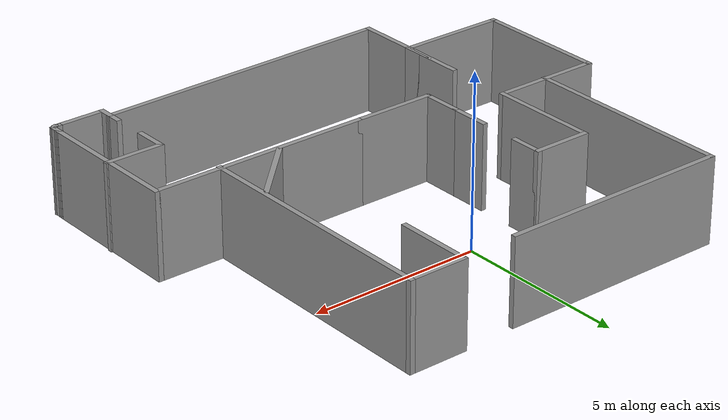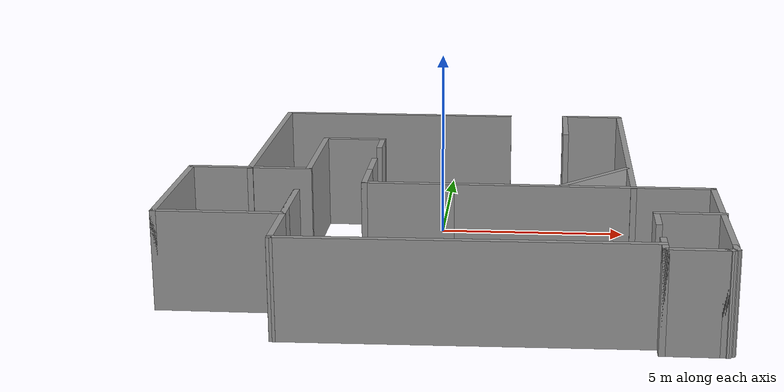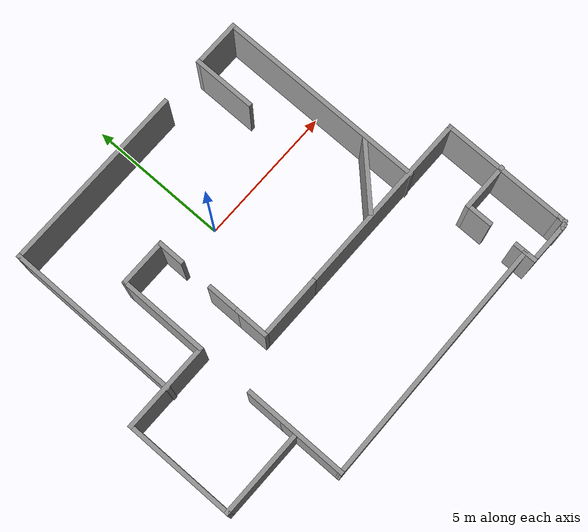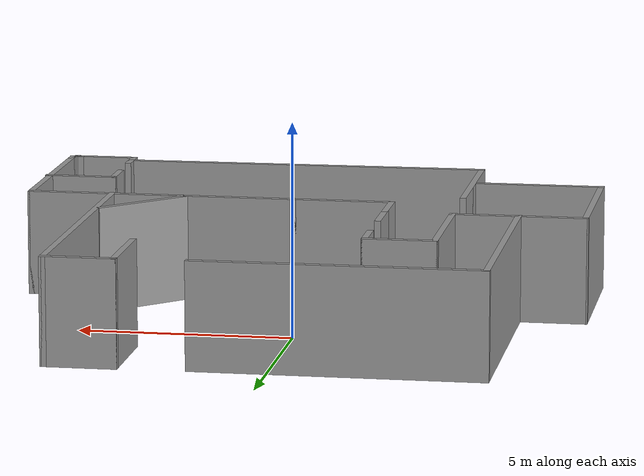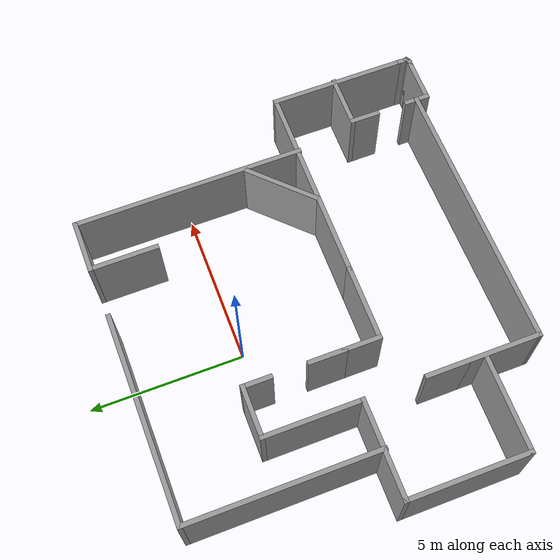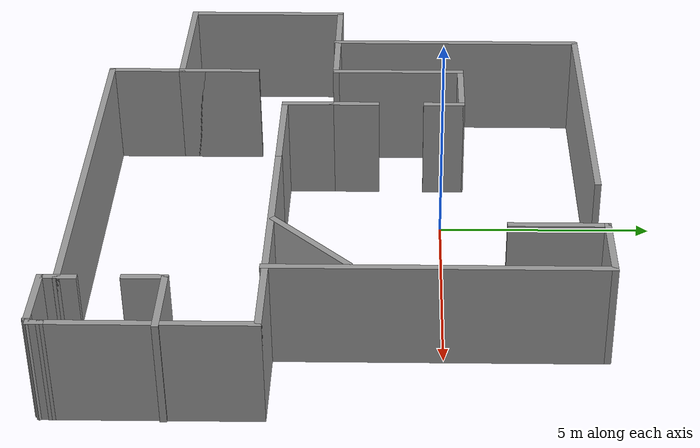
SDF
<?xml version='1.0'?>
<sdf version='1.6'>
  <model name='Roomtest'>
    <pose frame=''>0.29119 -2.44871 0 0 -0 0</pose>
    <link name='Wall_0'>
      <collision name='Wall_0_Collision'>
        <geometry>
          <box>
            <size>1.25 0.15 2.5</size>
          </box>
        </geometry>
        <pose frame=''>0 0 1.25 0 -0 0</pose>
      </collision>
      <visual name='Wall_0_Visual'>
        <pose frame=''>0 0 1.25 0 -0 0</pose>
        <geometry>
          <box>
            <size>1.25 0.15 2.5</size>
          </box>
        </geometry>
        <material>
          <script>
            <uri>file://media/materials/scripts/gazebo.material</uri>
            <name>Gazebo/Grey</name>
          </script>
          <ambient>1 1 1 1</ambient>
        </material>
        <meta>
          <layer>0</layer>
        </meta>
      </visual>
      <pose frame=''>-2.02119 0.328708 0 0 -0 -1.5708</pose>
    </link>
    <link name='Wall_10'>
      <collision name='Wall_10_Collision'>
        <geometry>
          <box>
            <size>2 0.15 2.5</size>
          </box>
        </geometry>
        <pose frame=''>0 0 1.25 0 -0 0</pose>
      </collision>
      <visual name='Wall_10_Visual'>
        <pose frame=''>0 0 1.25 0 -0 0</pose>
        <geometry>
          <box>
            <size>2 0.15 2.5</size>
          </box>
        </geometry>
        <material>
          <script>
            <uri>file://media/materials/scripts/gazebo.material</uri>
            <name>Gazebo/Grey</name>
          </script>
          <ambient>1 1 1 1</ambient>
        </material>
        <meta>
          <layer>0</layer>
        </meta>
      </visual>
      <pose frame=''>-3.61969 -3.07079 0 0 -0 1.5708</pose>
    </link>
    <link name='Wall_11'>
      <collision name='Wall_11_Collision'>
        <geometry>
          <box>
            <size>3.75 0.15 2.5</size>
          </box>
        </geometry>
        <pose frame=''>0 0 1.25 0 -0 0</pose>
      </collision>
      <visual name='Wall_11_Visual'>
        <pose frame=''>0 0 1.25 0 -0 0</pose>
        <geometry>
          <box>
            <size>3.75 0.15 2.5</size>
          </box>
        </geometry>
        <material>
          <script>
            <uri>file://media/materials/scripts/gazebo.material</uri>
            <name>Gazebo/Grey</name>
          </script>
          <ambient>1 1 1 1</ambient>
        </material>
        <meta>
          <layer>0</layer>
        </meta>
      </visual>
      <pose frame=''>-3.61969 -3.94579 0 0 -0 -1.5708</pose>
    </link>
    <link name='Wall_13'>
      <collision name='Wall_13_Collision'>
        <geometry>
          <box>
            <size>1.25 0.15 2.5</size>
          </box>
        </geometry>
        <pose frame=''>0 0 1.25 0 -0 0</pose>
      </collision>
      <visual name='Wall_13_Visual'>
        <pose frame=''>0 0 1.25 0 -0 0</pose>
        <geometry>
          <box>
            <size>1.25 0.15 2.5</size>
          </box>
        </geometry>
        <material>
          <script>
            <uri>file://media/materials/scripts/gazebo.material</uri>
            <name>Gazebo/Grey</name>
          </script>
          <ambient>1 1 1 1</ambient>
        </material>
        <meta>
          <layer>0</layer>
        </meta>
      </visual>
      <pose frame=''>-2.02119 -0.771292 0 0 -0 -1.5708</pose>
    </link>
    <link name='Wall_14'>
      <collision name='Wall_14_Collision'>
        <geometry>
          <box>
            <size>2.5 0.15 2.5</size>
          </box>
        </geometry>
        <pose frame=''>0 0 1.25 0 -0 0</pose>
      </collision>
      <visual name='Wall_14_Visual'>
        <pose frame=''>0 0 1.25 0 -0 0</pose>
        <geometry>
          <box>
            <size>2.5 0.15 2.5</size>
          </box>
        </geometry>
        <material>
          <script>
            <uri>file://media/materials/scripts/gazebo.material</uri>
            <name>Gazebo/Grey</name>
          </script>
          <ambient>1 1 1 1</ambient>
        </material>
        <meta>
          <layer>0</layer>
        </meta>
      </visual>
      <pose frame=''>-0.84619 -1.32129 0 0 -0 0</pose>
    </link>
    <link name='Wall_15'>
      <collision name='Wall_15_Collision'>
        <geometry>
          <box>
            <size>6.5 0.15 2.5</size>
          </box>
        </geometry>
        <pose frame=''>0 0 1.25 0 -0 0</pose>
      </collision>
      <visual name='Wall_15_Visual'>
        <pose frame=''>0 0 1.25 0 -0 0</pose>
        <geometry>
          <box>
            <size>6.5 0.15 2.5</size>
          </box>
        </geometry>
        <material>
          <script>
            <uri>file://media/materials/scripts/gazebo.material</uri>
            <name>Gazebo/Grey</name>
          </script>
          <ambient>1 1 1 1</ambient>
        </material>
        <meta>
          <layer>0</layer>
        </meta>
      </visual>
      <pose frame=''>3.50381 -1.32129 0 0 -0 0</pose>
    </link>
    <link name='Wall_16'>
      <collision name='Wall_16_Collision'>
        <geometry>
          <box>
            <size>4.5 0.15 2.5</size>
          </box>
        </geometry>
        <pose frame=''>0 0 1.25 0 -0 0</pose>
      </collision>
      <visual name='Wall_16_Visual'>
        <pose frame=''>0 0 1.25 0 -0 0</pose>
        <geometry>
          <box>
            <size>4.5 0.15 2.5</size>
          </box>
        </geometry>
        <material>
          <script>
            <uri>file://media/materials/scripts/gazebo.material</uri>
            <name>Gazebo/Grey</name>
          </script>
          <ambient>1 1 1 1</ambient>
        </material>
        <meta>
          <layer>0</layer>
        </meta>
      </visual>
      <pose frame=''>6.67881 -3.49629 0 0 -0 -1.5708</pose>
    </link>
    <link name='Wall_18'>
      <collision name='Wall_18_Collision'>
        <geometry>
          <box>
            <size>1.75 0.15 2.5</size>
          </box>
        </geometry>
        <pose frame=''>0 0 1.25 0 -0 0</pose>
      </collision>
      <visual name='Wall_18_Visual'>
        <pose frame=''>0 0 1.25 0 -0 0</pose>
        <geometry>
          <box>
            <size>1.75 0.15 2.5</size>
          </box>
        </geometry>
        <material>
          <script>
            <uri>file://media/materials/scripts/gazebo.material</uri>
            <name>Gazebo/Grey</name>
          </script>
          <ambient>1 1 1 1</ambient>
        </material>
        <meta>
          <layer>0</layer>
        </meta>
      </visual>
      <pose frame=''>5.91969 -3.36404 0 0 -0 3.14159</pose>
    </link>
    <link name='Wall_19'>
      <collision name='Wall_19_Collision'>
        <geometry>
          <box>
            <size>1 0.15 2.5</size>
          </box>
        </geometry>
        <pose frame=''>0 0 1.25 0 -0 0</pose>
      </collision>
      <visual name='Wall_19_Visual'>
        <pose frame=''>0 0 1.25 0 -0 0</pose>
        <geometry>
          <box>
            <size>1 0.15 2.5</size>
          </box>
        </geometry>
        <material>
          <script>
            <uri>file://media/materials/scripts/gazebo.material</uri>
            <name>Gazebo/Grey</name>
          </script>
          <ambient>1 1 1 1</ambient>
        </material>
        <meta>
          <layer>0</layer>
        </meta>
      </visual>
      <pose frame=''>5.11969 -3.78904 0 0 -0 -1.5708</pose>
    </link>
    <link name='Wall_21'>
      <collision name='Wall_21_Collision'>
        <geometry>
          <box>
            <size>0.5 0.15 2.5</size>
          </box>
        </geometry>
        <pose frame=''>0 0 1.25 0 -0 0</pose>
      </collision>
      <visual name='Wall_21_Visual'>
        <pose frame=''>0 0 1.25 0 -0 0</pose>
        <geometry>
          <box>
            <size>0.5 0.15 2.5</size>
          </box>
        </geometry>
        <material>
          <script>
            <uri>file://media/materials/scripts/gazebo.material</uri>
            <name>Gazebo/Grey</name>
          </script>
          <ambient>1 1 1 1</ambient>
        </material>
        <meta>
          <layer>0</layer>
        </meta>
      </visual>
      <pose frame=''>5.13665 -5.4387 0 0 -0 -1.5708</pose>
    </link>
    <link name='Wall_22'>
      <collision name='Wall_22_Collision'>
        <geometry>
          <box>
            <size>0.15 0.15 2.5</size>
          </box>
        </geometry>
        <pose frame=''>0 0 1.25 0 -0 0</pose>
      </collision>
      <visual name='Wall_22_Visual'>
        <pose frame=''>0 0 1.25 0 -0 0</pose>
        <geometry>
          <box>
            <size>0.15 0.15 2.5</size>
          </box>
        </geometry>
        <material>
          <script>
            <uri>file://media/materials/scripts/gazebo.material</uri>
            <name>Gazebo/Grey</name>
          </script>
          <ambient>1 1 1 1</ambient>
        </material>
        <meta>
          <layer>0</layer>
        </meta>
      </visual>
      <pose frame=''>5.13665 -5.6137 0 0 -0 0</pose>
    </link>
    <link name='Wall_23'>
      <collision name='Wall_23_Collision'>
        <geometry>
          <box>
            <size>0.15 0.15 2.5</size>
          </box>
        </geometry>
        <pose frame=''>0 0 1.25 0 -0 0</pose>
      </collision>
      <visual name='Wall_23_Visual'>
        <pose frame=''>0 0 1.25 0 -0 0</pose>
        <geometry>
          <box>
            <size>0.15 0.15 2.5</size>
          </box>
        </geometry>
        <material>
          <script>
            <uri>file://media/materials/scripts/gazebo.material</uri>
            <name>Gazebo/Grey</name>
          </script>
          <ambient>1 1 1 1</ambient>
        </material>
        <meta>
          <layer>0</layer>
        </meta>
      </visual>
      <pose frame=''>5.13665 -5.6137 0 0 -0 0</pose>
    </link>
    <link name='Wall_24'>
      <collision name='Wall_24_Collision'>
        <geometry>
          <box>
            <size>0.5 0.15 2.5</size>
          </box>
        </geometry>
        <pose frame=''>0 0 1.25 0 -0 0</pose>
      </collision>
      <visual name='Wall_24_Visual'>
        <pose frame=''>0 0 1.25 0 -0 0</pose>
        <geometry>
          <box>
            <size>0.5 0.15 2.5</size>
          </box>
        </geometry>
        <material>
          <script>
            <uri>file://media/materials/scripts/gazebo.material</uri>
            <name>Gazebo/Grey</name>
          </script>
          <ambient>1 1 1 1</ambient>
        </material>
        <meta>
          <layer>0</layer>
        </meta>
      </visual>
      <pose frame=''>5.13665 -5.7887 0 0 -0 -1.5708</pose>
    </link>
    <link name='Wall_25'>
      <collision name='Wall_25_Collision'>
        <geometry>
          <box>
            <size>1.5 0.15 2.5</size>
          </box>
        </geometry>
        <pose frame=''>0 0 1.25 0 -0 0</pose>
      </collision>
      <visual name='Wall_25_Visual'>
        <pose frame=''>0 0 1.25 0 -0 0</pose>
        <geometry>
          <box>
            <size>1.5 0.15 2.5</size>
          </box>
        </geometry>
        <material>
          <script>
            <uri>file://media/materials/scripts/gazebo.material</uri>
            <name>Gazebo/Grey</name>
          </script>
          <ambient>1 1 1 1</ambient>
        </material>
        <meta>
          <layer>0</layer>
        </meta>
      </visual>
      <pose frame=''>5.81165 -5.9637 0 0 -0 0</pose>
    </link>
    <link name='Wall_26'>
      <collision name='Wall_26_Collision'>
        <geometry>
          <box>
            <size>0.25 0.15 2.5</size>
          </box>
        </geometry>
        <pose frame=''>0 0 1.25 0 -0 0</pose>
      </collision>
      <visual name='Wall_26_Visual'>
        <pose frame=''>0 0 1.25 0 -0 0</pose>
        <geometry>
          <box>
            <size>0.25 0.15 2.5</size>
          </box>
        </geometry>
        <material>
          <script>
            <uri>file://media/materials/scripts/gazebo.material</uri>
            <name>Gazebo/Grey</name>
          </script>
          <ambient>1 1 1 1</ambient>
        </material>
        <meta>
          <layer>0</layer>
        </meta>
      </visual>
      <pose frame=''>6.53665 -5.9637 0 0 -0 0</pose>
    </link>
    <link name='Wall_27'>
      <collision name='Wall_27_Collision'>
        <geometry>
          <box>
            <size>0.25 0.15 2.5</size>
          </box>
        </geometry>
        <pose frame=''>0 0 1.25 0 -0 0</pose>
      </collision>
      <visual name='Wall_27_Visual'>
        <pose frame=''>0 0 1.25 0 -0 0</pose>
        <geometry>
          <box>
            <size>0.25 0.15 2.5</size>
          </box>
        </geometry>
        <material>
          <script>
            <uri>file://media/materials/scripts/gazebo.material</uri>
            <name>Gazebo/Grey</name>
          </script>
          <ambient>1 1 1 1</ambient>
        </material>
        <meta>
          <layer>0</layer>
        </meta>
      </visual>
      <pose frame=''>6.62995 -5.9387 0 0 -0 0.523599</pose>
    </link>
    <link name='Wall_28'>
      <collision name='Wall_28_Collision'>
        <geometry>
          <box>
            <size>0.392468 0.15 2.5</size>
          </box>
        </geometry>
        <pose frame=''>0 0 1.25 0 -0 0</pose>
      </collision>
      <visual name='Wall_28_Visual'>
        <pose frame=''>0 0 1.25 0 -0 0</pose>
        <geometry>
          <box>
            <size>0.392468 0.15 2.5</size>
          </box>
        </geometry>
        <material>
          <script>
            <uri>file://media/materials/scripts/gazebo.material</uri>
            <name>Gazebo/Grey</name>
          </script>
          <ambient>1 1 1 1</ambient>
        </material>
        <meta>
          <layer>0</layer>
        </meta>
      </visual>
      <pose frame=''>6.67603 -5.79249 0 0 -0 1.54786</pose>
    </link>
    <link name='Wall_3'>
      <collision name='Wall_3_Collision'>
        <geometry>
          <box>
            <size>1 0.15 2.5</size>
          </box>
        </geometry>
        <pose frame=''>0 0 1.25 0 -0 0</pose>
      </collision>
      <visual name='Wall_3_Visual'>
        <pose frame=''>0 0 1.25 0 -0 0</pose>
        <geometry>
          <box>
            <size>1 0.15 2.5</size>
          </box>
        </geometry>
        <material>
          <script>
            <uri>file://media/materials/scripts/gazebo.material</uri>
            <name>Gazebo/Grey</name>
          </script>
          <ambient>1 1 1 1</ambient>
        </material>
        <meta>
          <layer>0</layer>
        </meta>
      </visual>
      <pose frame=''>-2.01969 2.52921 0 0 -0 1.5708</pose>
    </link>
    <link name='Wall_30'>
      <collision name='Wall_30_Collision'>
        <geometry>
          <box>
            <size>8.90733 0.15 2.5</size>
          </box>
        </geometry>
        <pose frame=''>0 0 1.25 0 -0 0</pose>
      </collision>
      <visual name='Wall_30_Visual'>
        <pose frame=''>0 0 1.25 0 -0 0</pose>
        <geometry>
          <box>
            <size>8.90733 0.15 2.5</size>
          </box>
        </geometry>
        <material>
          <script>
            <uri>file://media/materials/scripts/gazebo.material</uri>
            <name>Gazebo/Grey</name>
          </script>
          <ambient>1 1 1 1</ambient>
        </material>
        <meta>
          <layer>0</layer>
        </meta>
      </visual>
      <pose frame=''>0.758478 -5.67974 0 0 -0 0.015085</pose>
    </link>
    <link name='Wall_32'>
      <collision name='Wall_32_Collision'>
        <geometry>
          <box>
            <size>7.5 0.15 2.5</size>
          </box>
        </geometry>
        <pose frame=''>0 0 1.25 0 -0 0</pose>
      </collision>
      <visual name='Wall_32_Visual'>
        <pose frame=''>0 0 1.25 0 -0 0</pose>
        <geometry>
          <box>
            <size>7.5 0.15 2.5</size>
          </box>
        </geometry>
        <material>
          <script>
            <uri>file://media/materials/scripts/gazebo.material</uri>
            <name>Gazebo/Grey</name>
          </script>
          <ambient>1 1 1 1</ambient>
        </material>
        <meta>
          <layer>0</layer>
        </meta>
      </visual>
      <pose frame=''>4.7145 2.31615 0 0 -0 1.5708</pose>
    </link>
    <link name='Wall_33'>
      <collision name='Wall_33_Collision'>
        <geometry>
          <box>
            <size>1.75 0.15 2.5</size>
          </box>
        </geometry>
        <pose frame=''>0 0 1.25 0 -0 0</pose>
      </collision>
      <visual name='Wall_33_Visual'>
        <pose frame=''>0 0 1.25 0 -0 0</pose>
        <geometry>
          <box>
            <size>1.75 0.15 2.5</size>
          </box>
        </geometry>
        <material>
          <script>
            <uri>file://media/materials/scripts/gazebo.material</uri>
            <name>Gazebo/Grey</name>
          </script>
          <ambient>1 1 1 1</ambient>
        </material>
        <meta>
          <layer>0</layer>
        </meta>
      </visual>
      <pose frame=''>3.9145 5.99115 0 0 -0 3.14159</pose>
    </link>
    <link name='Wall_34'>
      <collision name='Wall_34_Collision'>
        <geometry>
          <box>
            <size>2.25 0.15 2.5</size>
          </box>
        </geometry>
        <pose frame=''>0 0 1.25 0 -0 0</pose>
      </collision>
      <visual name='Wall_34_Visual'>
        <pose frame=''>0 0 1.25 0 -0 0</pose>
        <geometry>
          <box>
            <size>2.25 0.15 2.5</size>
          </box>
        </geometry>
        <material>
          <script>
            <uri>file://media/materials/scripts/gazebo.material</uri>
            <name>Gazebo/Grey</name>
          </script>
          <ambient>1 1 1 1</ambient>
        </material>
        <meta>
          <layer>0</layer>
        </meta>
      </visual>
      <pose frame=''>3.1145 4.94115 0 0 -0 -1.5708</pose>
    </link>
    <link name='Wall_36'>
      <collision name='Wall_36_Collision'>
        <geometry>
          <box>
            <size>6.75 0.15 2.5</size>
          </box>
        </geometry>
        <pose frame=''>0 0 1.25 0 -0 0</pose>
      </collision>
      <visual name='Wall_36_Visual'>
        <pose frame=''>0 0 1.25 0 -0 0</pose>
        <geometry>
          <box>
            <size>6.75 0.15 2.5</size>
          </box>
        </geometry>
        <material>
          <script>
            <uri>file://media/materials/scripts/gazebo.material</uri>
            <name>Gazebo/Grey</name>
          </script>
          <ambient>1 1 1 1</ambient>
        </material>
        <meta>
          <layer>0</layer>
        </meta>
      </visual>
      <pose frame=''>-1.85712 5.92315 0 0 -0 3.14159</pose>
    </link>
    <link name='Wall_37'>
      <collision name='Wall_37_Collision'>
        <geometry>
          <box>
            <size>6.25 0.15 2.5</size>
          </box>
        </geometry>
        <pose frame=''>0 0 1.25 0 -0 0</pose>
      </collision>
      <visual name='Wall_37_Visual'>
        <pose frame=''>0 0 1.25 0 -0 0</pose>
        <geometry>
          <box>
            <size>6.25 0.15 2.5</size>
          </box>
        </geometry>
        <material>
          <script>
            <uri>file://media/materials/scripts/gazebo.material</uri>
            <name>Gazebo/Grey</name>
          </script>
          <ambient>1 1 1 1</ambient>
        </material>
        <meta>
          <layer>0</layer>
        </meta>
      </visual>
      <pose frame=''>-5.15712 2.87315 0 0 -0 -1.5708</pose>
    </link>
    <link name='Wall_39'>
      <collision name='Wall_39_Collision'>
        <geometry>
          <box>
            <size>2.5 0.15 2.5</size>
          </box>
        </geometry>
        <pose frame=''>0 0 1.25 0 -0 0</pose>
      </collision>
      <visual name='Wall_39_Visual'>
        <pose frame=''>0 0 1.25 0 -0 0</pose>
        <geometry>
          <box>
            <size>2.5 0.15 2.5</size>
          </box>
        </geometry>
        <material>
          <script>
            <uri>file://media/materials/scripts/gazebo.material</uri>
            <name>Gazebo/Grey</name>
          </script>
          <ambient>1 1 1 1</ambient>
        </material>
        <meta>
          <layer>0</layer>
        </meta>
      </visual>
      <pose frame=''>3.78641 -0.422466 0 0 -0 0.785398</pose>
    </link>
    <link name='Wall_4'>
      <collision name='Wall_4_Collision'>
        <geometry>
          <box>
            <size>1.75 0.15 2.5</size>
          </box>
        </geometry>
        <pose frame=''>0 0 1.25 0 -0 0</pose>
      </collision>
      <visual name='Wall_4_Visual'>
        <pose frame=''>0 0 1.25 0 -0 0</pose>
        <geometry>
          <box>
            <size>1.75 0.15 2.5</size>
          </box>
        </geometry>
        <material>
          <script>
            <uri>file://media/materials/scripts/gazebo.material</uri>
            <name>Gazebo/Grey</name>
          </script>
          <ambient>1 1 1 1</ambient>
        </material>
        <meta>
          <layer>0</layer>
        </meta>
      </visual>
      <pose frame=''>-2.81969 2.95421 0 0 -0 3.14159</pose>
    </link>
    <link name='Wall_5'>
      <collision name='Wall_5_Collision'>
        <geometry>
          <box>
            <size>3.25 0.15 2.5</size>
          </box>
        </geometry>
        <pose frame=''>0 0 1.25 0 -0 0</pose>
      </collision>
      <visual name='Wall_5_Visual'>
        <pose frame=''>0 0 1.25 0 -0 0</pose>
        <geometry>
          <box>
            <size>3.25 0.15 2.5</size>
          </box>
        </geometry>
        <material>
          <script>
            <uri>file://media/materials/scripts/gazebo.material</uri>
            <name>Gazebo/Grey</name>
          </script>
          <ambient>1 1 1 1</ambient>
        </material>
        <meta>
          <layer>0</layer>
        </meta>
      </visual>
      <pose frame=''>-3.61969 1.40421 0 0 -0 -1.5708</pose>
    </link>
    <link name='Wall_7'>
      <collision name='Wall_7_Collision'>
        <geometry>
          <box>
            <size>3.25 0.15 2.5</size>
          </box>
        </geometry>
        <pose frame=''>0 0 1.25 0 -0 0</pose>
      </collision>
      <visual name='Wall_7_Visual'>
        <pose frame=''>0 0 1.25 0 -0 0</pose>
        <geometry>
          <box>
            <size>3.25 0.15 2.5</size>
          </box>
        </geometry>
        <material>
          <script>
            <uri>file://media/materials/scripts/gazebo.material</uri>
            <name>Gazebo/Grey</name>
          </script>
          <ambient>1 1 1 1</ambient>
        </material>
        <meta>
          <layer>0</layer>
        </meta>
      </visual>
      <pose frame=''>-5.16969 -0.145792 0 0 -0 3.14159</pose>
    </link>
    <link name='Wall_8'>
      <collision name='Wall_8_Collision'>
        <geometry>
          <box>
            <size>4 0.15 2.5</size>
          </box>
        </geometry>
        <pose frame=''>0 0 1.25 0 -0 0</pose>
      </collision>
      <visual name='Wall_8_Visual'>
        <pose frame=''>0 0 1.25 0 -0 0</pose>
        <geometry>
          <box>
            <size>4 0.15 2.5</size>
          </box>
        </geometry>
        <material>
          <script>
            <uri>file://media/materials/scripts/gazebo.material</uri>
            <name>Gazebo/Grey</name>
          </script>
          <ambient>1 1 1 1</ambient>
        </material>
        <meta>
          <layer>0</layer>
        </meta>
      </visual>
      <pose frame=''>-6.71969 -2.07079 0 0 -0 -1.5708</pose>
    </link>
    <link name='Wall_9'>
      <collision name='Wall_9_Collision'>
        <geometry>
          <box>
            <size>3.25 0.15 2.5</size>
          </box>
        </geometry>
        <pose frame=''>0 0 1.25 0 -0 0</pose>
      </collision>
      <visual name='Wall_9_Visual'>
        <pose frame=''>0 0 1.25 0 -0 0</pose>
        <geometry>
          <box>
            <size>3.25 0.15 2.5</size>
          </box>
        </geometry>
        <material>
          <script>
            <uri>file://media/materials/scripts/gazebo.material</uri>
            <name>Gazebo/Grey</name>
          </script>
          <ambient>1 1 1 1</ambient>
        </material>
        <meta>
          <layer>0</layer>
        </meta>
      </visual>
      <pose frame=''>-5.16969 -3.99579 0 0 -0 0</pose>
    </link>
    <static>1</static>
  </model>
</sdf>
